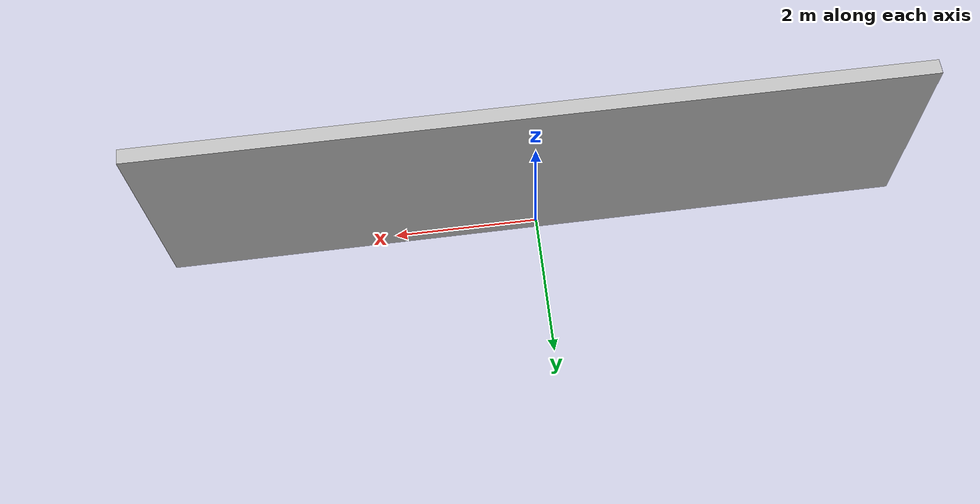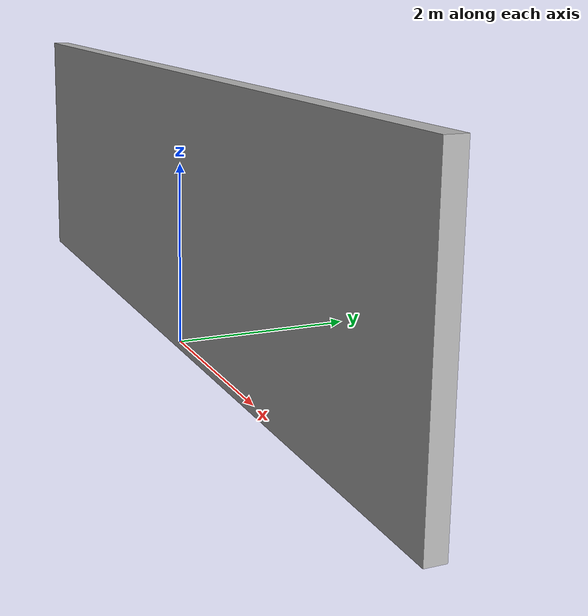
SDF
<?xml version="1.0" ?>
<sdf version="1.5">
  <model name="wall4">
    <static>true</static>
    <link name="chassis">
      <pose>0 0 1.5 0 0 0</pose>
      <collision name="collision">
        <geometry>
          <box>
            <size>10.2 0.2 3.0</size>
          </box>
        </geometry>
      </collision>
      <visual name="visual">
        <geometry>
          <mesh>
            <uri>model://wall4/meshes/simple_box.dae</uri>
            <scale>10.2 0.2 3.0</scale>
          </mesh>
        </geometry>
        <material>
          <script>
            <uri>model://wall4/materials/scripts</uri>
            <uri>model://wall4/materials/textures</uri>
            <name>wall4/Diffuse</name>
          </script>
        </material>
      </visual>
    </link>
  </model>
</sdf>
